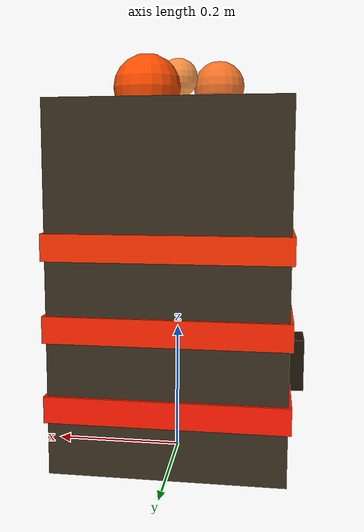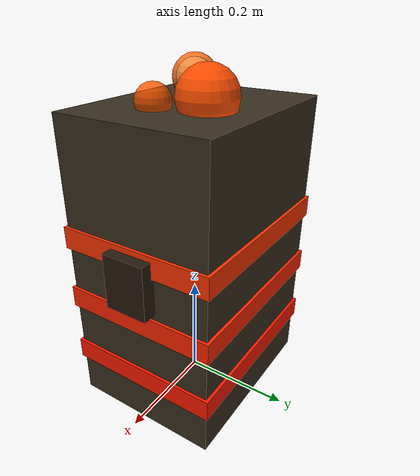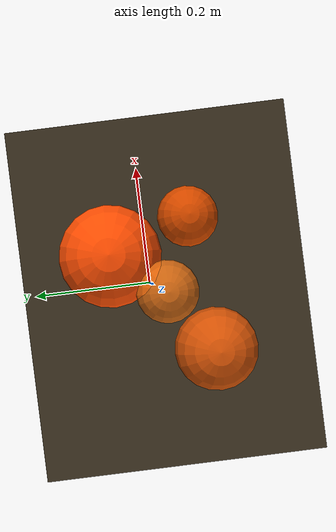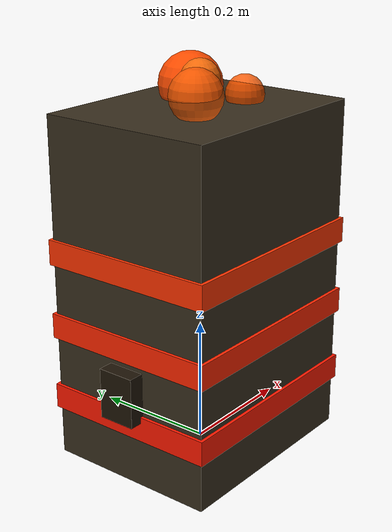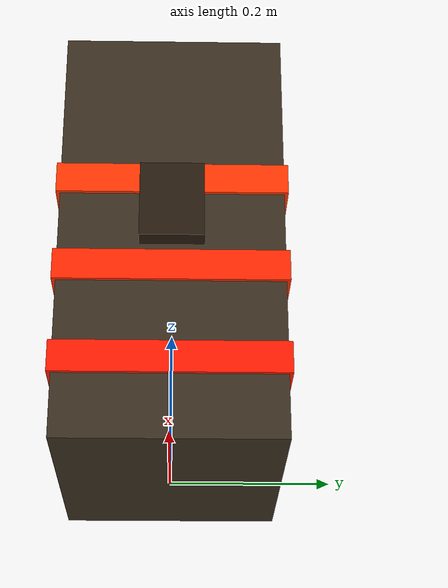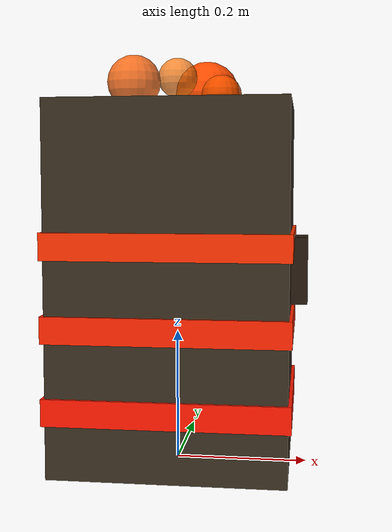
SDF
<?xml version="1.0" ?>
<sdf version="1.6">
  <model name="building_fire">
    <static>true</static>

    <link name="body">
      <pose>0 0 0.275 0 0 0</pose>
      <visual name="body_v"><geometry><box><size>0.35 0.28 0.55</size></box></geometry>
        <material><ambient>0.25 0.20 0.15 1.0</ambient><diffuse>0.22 0.18 0.12 1.0</diffuse></material></visual>
      <collision name="body_c"><geometry><box><size>0.35 0.28 0.55</size></box></geometry></collision>
    </link>

    <link name="win0"><pose>0 0 0.10 0 0 0</pose>
      <visual name="w0v"><geometry><box><size>0.36 0.29 0.04</size></box></geometry>
        <material><ambient>1.0 0.15 0.0 1.0</ambient><diffuse>1.0 0.10 0.0 1.0</diffuse></material></visual></link>
    <link name="win1"><pose>0 0 0.22 0 0 0</pose>
      <visual name="w1v"><geometry><box><size>0.36 0.29 0.04</size></box></geometry>
        <material><ambient>1.0 0.2 0.0 1.0</ambient><diffuse>1.0 0.15 0.0 1.0</diffuse></material></visual></link>
    <link name="win2"><pose>0 0 0.34 0 0 0</pose>
      <visual name="w2v"><geometry><box><size>0.36 0.29 0.04</size></box></geometry>
        <material><ambient>1.0 0.25 0.0 1.0</ambient><diffuse>1.0 0.20 0.0 1.0</diffuse></material></visual></link>

    <link name="flame0"><pose>0.04 0.05 0.57 0 0 0</pose>
      <visual name="f0v"><geometry><sphere><radius>0.05</radius></sphere></geometry>
        <material><ambient>1.0 0.3 0.0 0.9</ambient></material></visual></link>
    <link name="flame1"><pose>-0.06 -0.04 0.58 0 0 0</pose>
      <visual name="f1v"><geometry><sphere><radius>0.04</radius></sphere></geometry>
        <material><ambient>1.0 0.4 0.05 0.85</ambient></material></visual></link>
    <link name="flame2"><pose>0.0 0.0 0.59 0 0 0</pose>
      <visual name="f2v"><geometry><sphere><radius>0.03</radius></sphere></geometry>
        <material><ambient>1.0 0.5 0.1 0.8</ambient></material></visual></link>
    <link name="flame3"><pose>0.07 -0.03 0.56 0 0 0</pose>
      <visual name="f3v"><geometry><sphere><radius>0.03</radius></sphere></geometry>
        <material><ambient>1.0 0.35 0.0 0.85</ambient></material></visual></link>

    <link name="scorch1"><pose>0.18 0 0.30 0 0 0</pose>
      <visual name="sc1v"><geometry><box><size>0.04 0.08 0.10</size></box></geometry>
        <material><ambient>0.15 0.10 0.05 1.0</ambient></material></visual></link>
    <link name="scorch2"><pose>-0.18 0 0.15 0 0 0</pose>
      <visual name="sc2v"><geometry><box><size>0.04 0.06 0.08</size></box></geometry>
        <material><ambient>0.12 0.08 0.03 1.0</ambient></material></visual></link>

    <joint name="j_w0" type="fixed"><parent>body</parent><child>win0</child></joint>
    <joint name="j_w1" type="fixed"><parent>body</parent><child>win1</child></joint>
    <joint name="j_w2" type="fixed"><parent>body</parent><child>win2</child></joint>
    <joint name="j_f0" type="fixed"><parent>body</parent><child>flame0</child></joint>
    <joint name="j_f1" type="fixed"><parent>body</parent><child>flame1</child></joint>
    <joint name="j_f2" type="fixed"><parent>body</parent><child>flame2</child></joint>
    <joint name="j_f3" type="fixed"><parent>body</parent><child>flame3</child></joint>
    <joint name="j_sc1" type="fixed"><parent>body</parent><child>scorch1</child></joint>
    <joint name="j_sc2" type="fixed"><parent>body</parent><child>scorch2</child></joint>
  </model>
</sdf>
